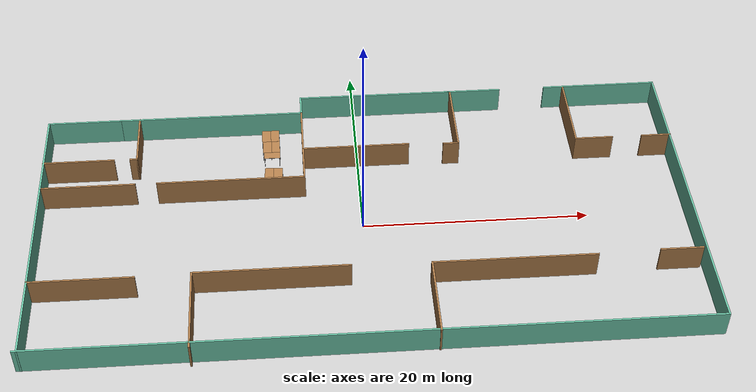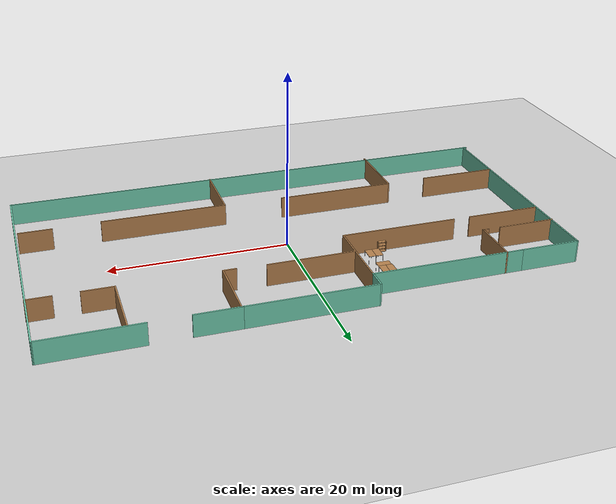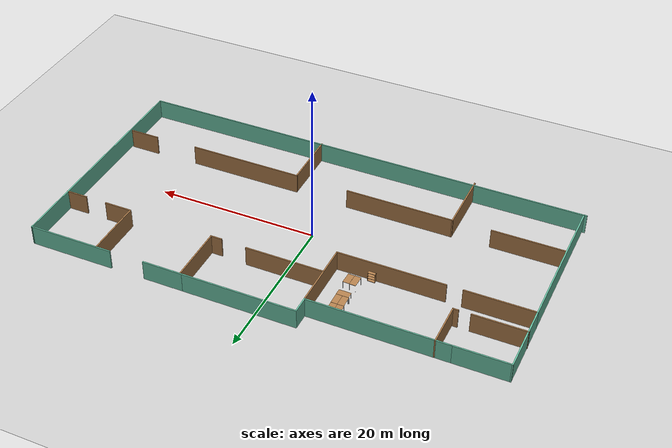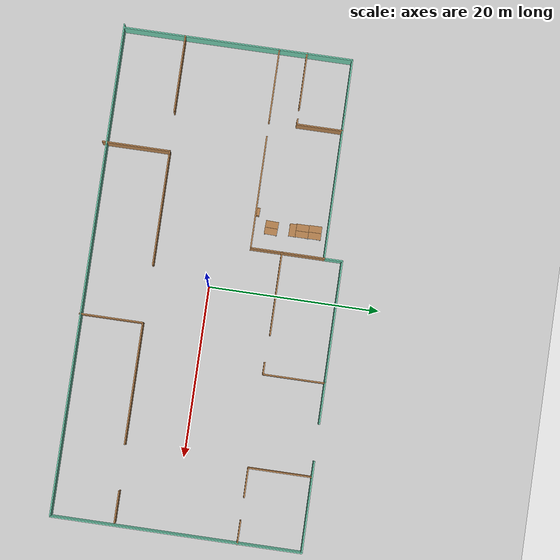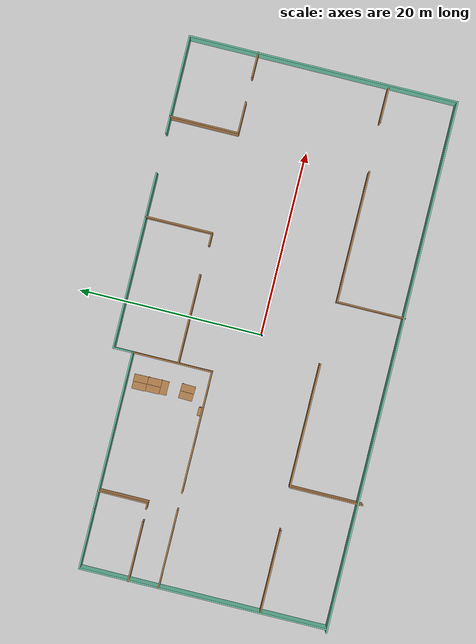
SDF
<sdf version="1.7">
 <world name="default">
  <model name="ground_plane">
   <static>1</static>
   <link name="link">
    <collision name="collision">
     <geometry><plane><normal>0 0 1</normal><size>100 100</size></plane></geometry>
     <surface>
      <contact><collide_bitmask>65535</collide_bitmask></contact>
      <friction><ode><mu>100</mu><mu2>50</mu2></ode></friction>
     </surface>
    </collision>
    <visual name="visual">
     <cast_shadows>0</cast_shadows>
     <geometry><plane><normal>0 0 1</normal><size>100 100</size></plane></geometry>
     <material>
      <script><uri>file://media/materials/scripts/gazebo.material</uri><name>Gazebo/Grey</name></script>
     </material>
    </visual>
   </link>
  </model>
  <model name="full_office">
   <pose>0.0274 0.1655 0 0 -0 0</pose>
   <link name="Wall_0">
    <collision name="Wall_0_Collision">
     <geometry><box><size>17 0.15 2.5</size></box></geometry>
     <pose>0 0 1.25 0 -0 0</pose>
    </collision>
    <visual name="Wall_0_Visual">
     <pose>0 0 1.25 0 -0 0</pose>
     <geometry><box><size>17 0.15 2.5</size></box></geometry>
     <material>
      <script><uri>file://media/materials/scripts/gazebo.material</uri><name>Gazebo/Grey</name></script>
      <ambient>0.435294 0.796078 0.67451 1</ambient>
     </material>
     <meta><layer>0</layer></meta>
    </visual>
    <pose>-13.4599 12.605 0 0 -0 0</pose>
   </link>
   <link name="Wall_1">
    <collision name="Wall_1_Collision">
     <geometry><box><size>8.75 0.15 2.5</size></box></geometry>
     <pose>0 0 1.25 0 -0 0</pose>
    </collision>
    <visual name="Wall_1_Visual">
     <pose>0 0 1.25 0 -0 0</pose>
     <geometry><box><size>8.75 0.15 2.5</size></box></geometry>
     <material>
      <script><uri>file://media/materials/scripts/gazebo.material</uri><name>Gazebo/Wood</name></script>
      <ambient>1 0.764706 0.305882 1</ambient>
     </material>
     <meta><layer>0</layer></meta>
    </visual>
    <pose>-5.03487 8.30505 0 0 -0 -1.5708</pose>
   </link>
   <link name="Wall_12">
    <collision name="Wall_12_Collision">
     <geometry><box><size>6.5 0.15 2.5</size></box></geometry>
     <pose>0 0 1.25 0 -0 0</pose>
    </collision>
    <visual name="Wall_12_Visual">
     <pose>0 0 1.25 0 -0 0</pose>
     <geometry><box><size>6.5 0.15 2.5</size></box></geometry>
     <material>
      <script><uri>file://media/materials/scripts/gazebo.material</uri><name>Gazebo/Wood</name></script>
      <ambient>1 0.764706 0.305882 1</ambient>
     </material>
     <meta><layer>0</layer></meta>
    </visual>
    <pose>-25.359 7.2693 0 0 -0 0</pose>
   </link>
   <link name="Wall_14">
    <collision name="Wall_14_Collision">
     <geometry><box><size>0.75 0.15 2.5</size></box></geometry>
     <pose>0 0 1.25 0 -0 0</pose>
    </collision>
    <visual name="Wall_14_Visual">
     <pose>0 0 1.25 0 -0 0</pose>
     <geometry><box><size>0.75 0.15 2.5</size></box></geometry>
     <material>
      <script><uri>file://media/materials/scripts/gazebo.material</uri><name>Gazebo/Wood</name></script>
      <ambient>1 0.764706 0.305882 1</ambient>
     </material>
     <meta><layer>0</layer></meta>
    </visual>
    <pose>-20.387 7.2693 0 0 -0 0</pose>
   </link>
   <link name="Wall_15">
    <collision name="Wall_15_Collision">
     <geometry><box><size>5.5 0.15 2.5</size></box></geometry>
     <pose>0 0 1.25 0 -0 0</pose>
    </collision>
    <visual name="Wall_15_Visual">
     <pose>0 0 1.25 0 -0 0</pose>
     <geometry><box><size>5.5 0.15 2.5</size></box></geometry>
     <material>
      <script><uri>file://media/materials/scripts/gazebo.material</uri><name>Gazebo/Wood</name></script>
      <ambient>1 0.764706 0.305882 1</ambient>
     </material>
     <meta><layer>0</layer></meta>
    </visual>
    <pose>-20.087 9.9443 0 0 -0 1.5708</pose>
   </link>
   <link name="Wall_2">
    <collision name="Wall_2_Collision">
     <geometry><box><size>13.25 0.15 2.5</size></box></geometry>
     <pose>0 0 1.25 0 -0 0</pose>
    </collision>
    <visual name="Wall_2_Visual">
     <pose>0 0 1.25 0 -0 0</pose>
     <geometry><box><size>13.25 0.15 2.5</size></box></geometry>
     <material>
      <script><uri>file://media/materials/scripts/gazebo.material</uri><name>Gazebo/Wood</name></script>
      <ambient>1 0.764706 0.305882 1</ambient>
     </material>
     <meta><layer>0</layer></meta>
    </visual>
    <pose>-11.5849 4.00505 0 0 -0 3.14159</pose>
   </link>
   <link name="Wall_27">
    <collision name="Wall_27_Collision">
     <geometry><box><size>57.75 0.15 2.5</size></box></geometry>
     <pose>0 0 1.25 0 -0 0</pose>
    </collision>
    <visual name="Wall_27_Visual">
     <pose>0 0 1.25 0 -0 0</pose>
     <geometry><box><size>57.75 0.15 2.5</size></box></geometry>
     <material>
      <script><uri>file://media/materials/scripts/gazebo.material</uri><name>Gazebo/Grey</name></script>
      <ambient>0.435294 0.796078 0.67451 1</ambient>
     </material>
     <meta><layer>0</layer></meta>
    </visual>
    <pose>-0.020816 -14.3292 0 0 -0 0</pose>
   </link>
   <link name="Wall_28">
    <collision name="Wall_28_Collision">
     <geometry><box><size>29.25 0.15 2.5</size></box></geometry>
     <pose>0 0 1.25 0 -0 0</pose>
    </collision>
    <visual name="Wall_28_Visual">
     <pose>0 0 1.25 0 -0 0</pose>
     <geometry><box><size>29.25 0.15 2.5</size></box></geometry>
     <material>
      <script><uri>file://media/materials/scripts/gazebo.material</uri><name>Gazebo/Grey</name></script>
      <ambient>0.435294 0.796078 0.67451 1</ambient>
     </material>
     <meta><layer>0</layer></meta>
    </visual>
    <pose>28.7792 0.220838 0 0 -0 1.5708</pose>
   </link>
   <link name="Wall_32">
    <collision name="Wall_32_Collision">
     <geometry><box><size>2.25 0.15 2.5</size></box></geometry>
     <pose>0 0 1.25 0 -0 0</pose>
    </collision>
    <visual name="Wall_32_Visual">
     <pose>0 0 1.25 0 -0 0</pose>
     <geometry><box><size>2.25 0.15 2.5</size></box></geometry>
     <material>
      <script><uri>file://media/materials/scripts/gazebo.material</uri><name>Gazebo/Grey</name></script>
      <ambient>0.435294 0.796078 0.67451 1</ambient>
     </material>
     <meta><layer>0</layer></meta>
    </visual>
    <pose>-5.03487 13.655 0 0 -0 1.5708</pose>
   </link>
   <link name="Wall_37">
    <collision name="Wall_37_Collision">
     <geometry><box><size>9.75 0.15 2.5</size></box></geometry>
     <pose>0 0 1.25 0 -0 0</pose>
    </collision>
    <visual name="Wall_37_Visual">
     <pose>0 0 1.25 0 -0 0</pose>
     <geometry><box><size>9.75 0.15 2.5</size></box></geometry>
     <material>
      <script><uri>file://media/materials/scripts/gazebo.material</uri><name>Gazebo/Wood</name></script>
      <ambient>1 1 1 1</ambient>
     </material>
     <meta><layer>0</layer></meta>
    </visual>
    <pose>-0.207313 7.6604 0 0 -0 0</pose>
   </link>
   <link name="Wall_39">
    <collision name="Wall_39_Collision">
     <geometry><box><size>1.5 0.15 2.5</size></box></geometry>
     <pose>0 0 1.25 0 -0 0</pose>
    </collision>
    <visual name="Wall_39_Visual">
     <pose>0 0 1.25 0 -0 0</pose>
     <geometry><box><size>1.5 0.15 2.5</size></box></geometry>
     <material>
      <script><uri>file://media/materials/scripts/gazebo.material</uri><name>Gazebo/Wood</name></script>
      <ambient>1 1 1 1</ambient>
     </material>
     <meta><layer>0</layer></meta>
    </visual>
    <pose>8.53256 7.49858 0 0 -0 0</pose>
   </link>
   <link name="Wall_4">
    <collision name="Wall_4_Collision">
     <geometry><box><size>6.75 0.15 2.5</size></box></geometry>
     <pose>0 0 1.25 0 -0 0</pose>
    </collision>
    <visual name="Wall_4_Visual">
     <pose>0 0 1.25 0 -0 0</pose>
     <geometry><box><size>6.75 0.15 2.5</size></box></geometry>
     <material>
      <script><uri>file://media/materials/scripts/gazebo.material</uri><name>Gazebo/Grey</name></script>
      <ambient>0.435294 0.796078 0.67451 1</ambient>
     </material>
     <meta><layer>0</layer></meta>
    </visual>
    <pose>-25.1849 12.605 0 0 -0 3.14159</pose>
   </link>
   <link name="Wall_40">
    <collision name="Wall_40_Collision">
     <geometry><box><size>7.25 0.15 2.5</size></box></geometry>
     <pose>0 0 1.25 0 -0 0</pose>
    </collision>
    <visual name="Wall_40_Visual">
     <pose>0 0 1.25 0 -0 0</pose>
     <geometry><box><size>7.25 0.15 2.5</size></box></geometry>
     <material>
      <script><uri>file://media/materials/scripts/gazebo.material</uri><name>Gazebo/Wood</name></script>
      <ambient>1 1 1 1</ambient>
     </material>
     <meta><layer>0</layer></meta>
    </visual>
    <pose>9.20756 11.0486 0 0 -0 1.5708</pose>
   </link>
   <link name="Wall_42">
    <collision name="Wall_42_Collision">
     <geometry><box><size>7.5 0.15 2.5</size></box></geometry>
     <pose>0 0 1.25 0 -0 0</pose>
    </collision>
    <visual name="Wall_42_Visual">
     <pose>0 0 1.25 0 -0 0</pose>
     <geometry><box><size>7.5 0.15 2.5</size></box></geometry>
     <material>
      <script><uri>file://media/materials/scripts/gazebo.material</uri><name>Gazebo/Wood</name></script>
      <ambient>1 1 1 1</ambient>
     </material>
     <meta><layer>0</layer></meta>
    </visual>
    <pose>20.0751 11.0247 0 0 -0 -1.5708</pose>
   </link>
   <link name="Wall_43">
    <collision name="Wall_43_Collision">
     <geometry><box><size>3.5 0.15 2.5</size></box></geometry>
     <pose>0 0 1.25 0 -0 0</pose>
    </collision>
    <visual name="Wall_43_Visual">
     <pose>0 0 1.25 0 -0 0</pose>
     <geometry><box><size>3.5 0.15 2.5</size></box></geometry>
     <material>
      <script><uri>file://media/materials/scripts/gazebo.material</uri><name>Gazebo/Wood</name></script>
      <ambient>1 1 1 1</ambient>
     </material>
     <meta><layer>0</layer></meta>
    </visual>
    <pose>21.7501 7.34967 0 0 -0 0</pose>
   </link>
   <link name="Wall_45">
    <collision name="Wall_45_Collision">
     <geometry><box><size>2.75 0.15 2.5</size></box></geometry>
     <pose>0 0 1.25 0 -0 0</pose>
    </collision>
    <visual name="Wall_45_Visual">
     <pose>0 0 1.25 0 -0 0</pose>
     <geometry><box><size>2.75 0.15 2.5</size></box></geometry>
     <material>
      <script><uri>file://media/materials/scripts/gazebo.material</uri><name>Gazebo/Wood</name></script>
      <ambient>1 1 1 1</ambient>
     </material>
     <meta><layer>0</layer></meta>
    </visual>
    <pose>27.5208 7.33676 0 0 -0 3.14159</pose>
   </link>
   <link name="Wall_48">
    <collision name="Wall_48_Collision">
     <geometry><box><size>18.5 0.15 2.5</size></box></geometry>
     <pose>0 0 1.25 0 -0 0</pose>
    </collision>
    <visual name="Wall_48_Visual">
     <pose>0 0 1.25 0 -0 0</pose>
     <geometry><box><size>18.5 0.15 2.5</size></box></geometry>
     <material>
      <script><uri>file://media/materials/scripts/gazebo.material</uri><name>Gazebo/Grey</name></script>
      <ambient>0.435294 0.796078 0.67451 1</ambient>
     </material>
     <meta><layer>0</layer></meta>
    </visual>
    <pose>-28.4849 -5.16995 0 0 -0 -1.5708</pose>
   </link>
   <link name="Wall_5">
    <collision name="Wall_5_Collision">
     <geometry><box><size>8.75 0.15 2.5</size></box></geometry>
     <pose>0 0 1.25 0 -0 0</pose>
    </collision>
    <visual name="Wall_5_Visual">
     <pose>0 0 1.25 0 -0 0</pose>
     <geometry><box><size>8.75 0.15 2.5</size></box></geometry>
     <material>
      <script><uri>file://media/materials/scripts/gazebo.material</uri><name>Gazebo/Grey</name></script>
      <ambient>0.435294 0.796078 0.67451 1</ambient>
     </material>
     <meta><layer>0</layer></meta>
    </visual>
    <pose>-28.4849 8.30505 0 0 -0 -1.5708</pose>
   </link>
   <link name="Wall_50">
    <collision name="Wall_50_Collision">
     <geometry><box><size>9 0.15 2.5</size></box></geometry>
     <pose>0 0 1.25 0 -0 0</pose>
    </collision>
    <visual name="Wall_50_Visual">
     <pose>0 0 1.25 0 -0 0</pose>
     <geometry><box><size>9 0.15 2.5</size></box></geometry>
     <material>
      <script><uri>file://media/materials/scripts/gazebo.material</uri><name>Gazebo/Wood</name></script>
      <ambient>1 1 1 1</ambient>
     </material>
     <meta><layer>0</layer></meta>
    </visual>
    <pose>-24.0351 -7.08379 0 0 -0 0</pose>
   </link>
   <link name="Wall_52">
    <collision name="Wall_52_Collision">
     <geometry><box><size>13.5 0.15 2.5</size></box></geometry>
     <pose>0 0 1.25 0 -0 0</pose>
    </collision>
    <visual name="Wall_52_Visual">
     <pose>0 0 1.25 0 -0 0</pose>
     <geometry><box><size>13.5 0.15 2.5</size></box></geometry>
     <material>
      <script><uri>file://media/materials/scripts/gazebo.material</uri><name>Gazebo/Wood</name></script>
      <ambient>1 1 1 1</ambient>
     </material>
     <meta><layer>0</layer></meta>
    </visual>
    <pose>-8.1903 -6.92105 0 0 -0 0</pose>
   </link>
   <link name="Wall_54">
    <collision name="Wall_54_Collision">
     <geometry><box><size>14.25 0.15 2.5</size></box></geometry>
     <pose>0 0 1.25 0 -0 0</pose>
    </collision>
    <visual name="Wall_54_Visual">
     <pose>0 0 1.25 0 -0 0</pose>
     <geometry><box><size>14.25 0.15 2.5</size></box></geometry>
     <material>
      <script><uri>file://media/materials/scripts/gazebo.material</uri><name>Gazebo/Wood</name></script>
      <ambient>1 1 1 1</ambient>
     </material>
     <meta><layer>0</layer></meta>
    </visual>
    <pose>12.3646 -7.08379 0 0 -0 0</pose>
   </link>
   <link name="Wall_56">
    <collision name="Wall_56_Collision">
     <geometry><box><size>3.75 0.15 2.5</size></box></geometry>
     <pose>0 0 1.25 0 -0 0</pose>
    </collision>
    <visual name="Wall_56_Visual">
     <pose>0 0 1.25 0 -0 0</pose>
     <geometry><box><size>3.75 0.15 2.5</size></box></geometry>
     <material>
      <script><uri>file://media/materials/scripts/gazebo.material</uri><name>Gazebo/Wood</name></script>
      <ambient>1 1 1 1</ambient>
     </material>
     <meta><layer>0</layer></meta>
    </visual>
    <pose>26.6436 -6.92105 0 0 -0 0</pose>
   </link>
   <link name="Wall_58">
    <collision name="Wall_58_Collision">
     <geometry><box><size>8 0.15 2.5</size></box></geometry>
     <pose>0 0 1.25 0 -0 0</pose>
    </collision>
    <visual name="Wall_58_Visual">
     <pose>0 0 1.25 0 -0 0</pose>
     <geometry><box><size>8 0.15 2.5</size></box></geometry>
     <material>
      <script><uri>file://media/materials/scripts/gazebo.material</uri><name>Gazebo/Wood</name></script>
      <ambient>1 1 1 1</ambient>
     </material>
     <meta><layer>0</layer></meta>
    </visual>
    <pose>-14.8653 -10.846 0 0 -0 -1.5708</pose>
   </link>
   <link name="Wall_6">
    <collision name="Wall_6_Collision">
     <geometry><box><size>8.5 0.15 2.5</size></box></geometry>
     <pose>0 0 1.25 0 -0 0</pose>
    </collision>
    <visual name="Wall_6_Visual">
     <pose>0 0 1.25 0 -0 0</pose>
     <geometry><box><size>8.5 0.15 2.5</size></box></geometry>
     <material>
      <script><uri>file://media/materials/scripts/gazebo.material</uri><name>Gazebo/Wood</name></script>
      <ambient>1 0.764706 0.305882 1</ambient>
     </material>
     <meta><layer>0</layer></meta>
    </visual>
    <pose>-24.3099 4.00505 0 0 -0 0</pose>
   </link>
   <link name="Wall_62">
    <collision name="Wall_62_Collision">
     <geometry><box><size>7.5 0.15 2.5</size></box></geometry>
     <pose>0 0 1.25 0 -0 0</pose>
    </collision>
    <visual name="Wall_62_Visual">
     <pose>0 0 1.25 0 -0 0</pose>
     <geometry><box><size>7.5 0.15 2.5</size></box></geometry>
     <material>
      <script><uri>file://media/materials/scripts/gazebo.material</uri><name>Gazebo/Wood</name></script>
      <ambient>1 1 1 1</ambient>
     </material>
     <meta><layer>0</layer></meta>
    </visual>
    <pose>5.31461 -10.7588 0 0 -0 -1.5708</pose>
   </link>
   <link name="Wall_64">
    <collision name="Wall_64_Collision">
     <geometry><box><size>14.25 0.15 2.5</size></box></geometry>
     <pose>0 0 1.25 0 -0 0</pose>
    </collision>
    <visual name="Wall_64_Visual">
     <pose>0 0 1.25 0 -0 0</pose>
     <geometry><box><size>14.25 0.15 2.5</size></box></geometry>
     <material>
      <script><uri>file://media/materials/scripts/gazebo.material</uri><name>Gazebo/Grey</name></script>
      <ambient>0.435294 0.796078 0.67451 1</ambient>
     </material>
     <meta><layer>0</layer></meta>
    </visual>
    <pose>2.01513 14.705 0 0 -0 0</pose>
   </link>
   <link name="Wall_66">
    <collision name="Wall_66_Collision">
     <geometry><box><size>5 0.15 2.5</size></box></geometry>
     <pose>0 0 1.25 0 -0 0</pose>
    </collision>
    <visual name="Wall_66_Visual">
     <pose>0 0 1.25 0 -0 0</pose>
     <geometry><box><size>5 0.15 2.5</size></box></geometry>
     <material>
      <script><uri>file://media/materials/scripts/gazebo.material</uri><name>Gazebo/Grey</name></script>
      <ambient>0.435294 0.796078 0.67451 1</ambient>
     </material>
     <meta><layer>0</layer></meta>
    </visual>
    <pose>11.4901 14.705 0 0 -0 0</pose>
   </link>
   <link name="Wall_68">
    <collision name="Wall_68_Collision">
     <geometry><box><size>10.6315 0.15 2.5</size></box></geometry>
     <pose>0 0 1.25 0 -0 0</pose>
    </collision>
    <visual name="Wall_68_Visual">
     <pose>0 0 1.25 0 -0 0</pose>
     <geometry><box><size>10.6315 0.15 2.5</size></box></geometry>
     <material>
      <script><uri>file://media/materials/scripts/gazebo.material</uri><name>Gazebo/Grey</name></script>
      <ambient>0.435294 0.796078 0.67451 1</ambient>
     </material>
     <meta><layer>0</layer></meta>
    </visual>
    <pose>23.5385 14.756 0 0 -0 0.002825</pose>
   </link>
   <static>1</static>
  </model>
  <model name="table_0_clone_6">
   <static>1</static>
   <link name="link">
    <collision name="surface">
     <pose>0 0 1 0 -0 0</pose>
     <geometry><box><size>1.5 0.8 0.03</size></box></geometry>
     <surface><friction><ode><mu>0.6</mu><mu2>0.6</mu2></ode></friction></surface>
    </collision>
    <visual name="visual1">
     <pose>0 0 1 0 -0 0</pose>
     <geometry><box><size>1.5 0.8 0.03</size></box></geometry>
     <material>
      <script><uri>file://media/materials/scripts/gazebo.material</uri><name>Gazebo/Wood</name></script>
     </material>
    </visual>
    <collision name="front_left_leg">
     <pose>0.68 0.38 0.5 0 -0 0</pose>
     <geometry><cylinder><radius>0.02</radius><length>1</length></cylinder></geometry>
    </collision>
    <visual name="front_left_leg">
     <pose>0.68 0.38 0.5 0 -0 0</pose>
     <geometry><cylinder><radius>0.02</radius><length>1</length></cylinder></geometry>
     <material>
      <script><uri>file://media/materials/scripts/gazebo.material</uri><name>Gazebo/Grey</name></script>
     </material>
    </visual>
    <collision name="front_right_leg">
     <pose>0.68 -0.38 0.5 0 -0 0</pose>
     <geometry><cylinder><radius>0.02</radius><length>1</length></cylinder></geometry>
    </collision>
    <visual name="front_right_leg">
     <pose>0.68 -0.38 0.5 0 -0 0</pose>
     <geometry><cylinder><radius>0.02</radius><length>1</length></cylinder></geometry>
     <material>
      <script><uri>file://media/materials/scripts/gazebo.material</uri><name>Gazebo/Grey</name></script>
     </material>
    </visual>
    <collision name="back_right_leg">
     <pose>-0.68 -0.38 0.5 0 -0 0</pose>
     <geometry><cylinder><radius>0.02</radius><length>1</length></cylinder></geometry>
    </collision>
    <visual name="back_right_leg">
     <pose>-0.68 -0.38 0.5 0 -0 0</pose>
     <geometry><cylinder><radius>0.02</radius><length>1</length></cylinder></geometry>
     <material>
      <script><uri>file://media/materials/scripts/gazebo.material</uri><name>Gazebo/Grey</name></script>
     </material>
    </visual>
    <collision name="back_left_leg">
     <pose>-0.68 0.38 0.5 0 -0 0</pose>
     <geometry><cylinder><radius>0.02</radius><length>1</length></cylinder></geometry>
    </collision>
    <visual name="back_left_leg">
     <pose>-0.68 0.38 0.5 0 -0 0</pose>
     <geometry><cylinder><radius>0.02</radius><length>1</length></cylinder></geometry>
     <material>
      <script><uri>file://media/materials/scripts/gazebo.material</uri><name>Gazebo/Grey</name></script>
     </material>
    </visual>
   </link>
   <pose>-8.18867 6.22527 7.2e-05 0.000175 0.010072 1.53538</pose>
  </model>
  <model name="table_0_clone_7">
   <static>1</static>
   <link name="link">
    <collision name="surface">
     <pose>0 0 1 0 -0 0</pose>
     <geometry><box><size>1.5 0.8 0.03</size></box></geometry>
     <surface><friction><ode><mu>0.6</mu><mu2>0.6</mu2></ode></friction></surface>
    </collision>
    <visual name="visual1">
     <pose>0 0 1 0 -0 0</pose>
     <geometry><box><size>1.5 0.8 0.03</size></box></geometry>
     <material>
      <script><uri>file://media/materials/scripts/gazebo.material</uri><name>Gazebo/Wood</name></script>
     </material>
    </visual>
    <collision name="front_left_leg">
     <pose>0.68 0.38 0.5 0 -0 0</pose>
     <geometry><cylinder><radius>0.02</radius><length>1</length></cylinder></geometry>
    </collision>
    <visual name="front_left_leg">
     <pose>0.68 0.38 0.5 0 -0 0</pose>
     <geometry><cylinder><radius>0.02</radius><length>1</length></cylinder></geometry>
     <material>
      <script><uri>file://media/materials/scripts/gazebo.material</uri><name>Gazebo/Grey</name></script>
     </material>
    </visual>
    <collision name="front_right_leg">
     <pose>0.68 -0.38 0.5 0 -0 0</pose>
     <geometry><cylinder><radius>0.02</radius><length>1</length></cylinder></geometry>
    </collision>
    <visual name="front_right_leg">
     <pose>0.68 -0.38 0.5 0 -0 0</pose>
     <geometry><cylinder><radius>0.02</radius><length>1</length></cylinder></geometry>
     <material>
      <script><uri>file://media/materials/scripts/gazebo.material</uri><name>Gazebo/Grey</name></script>
     </material>
    </visual>
    <collision name="back_right_leg">
     <pose>-0.68 -0.38 0.5 0 -0 0</pose>
     <geometry><cylinder><radius>0.02</radius><length>1</length></cylinder></geometry>
    </collision>
    <visual name="back_right_leg">
     <pose>-0.68 -0.38 0.5 0 -0 0</pose>
     <geometry><cylinder><radius>0.02</radius><length>1</length></cylinder></geometry>
     <material>
      <script><uri>file://media/materials/scripts/gazebo.material</uri><name>Gazebo/Grey</name></script>
     </material>
    </visual>
    <collision name="back_left_leg">
     <pose>-0.68 0.38 0.5 0 -0 0</pose>
     <geometry><cylinder><radius>0.02</radius><length>1</length></cylinder></geometry>
    </collision>
    <visual name="back_left_leg">
     <pose>-0.68 0.38 0.5 0 -0 0</pose>
     <geometry><cylinder><radius>0.02</radius><length>1</length></cylinder></geometry>
     <material>
      <script><uri>file://media/materials/scripts/gazebo.material</uri><name>Gazebo/Grey</name></script>
     </material>
    </visual>
   </link>
   <pose>-7.38527 6.20263 0 0 0 -1.60113</pose>
  </model>
  <model name="table_1">
   <static>1</static>
   <link name="link">
    <collision name="surface">
     <pose>0 0 1 0 -0 0</pose>
     <geometry><box><size>1.5 0.8 0.03</size></box></geometry>
     <surface><friction><ode><mu>0.6</mu><mu2>0.6</mu2></ode></friction></surface>
    </collision>
    <visual name="visual1">
     <pose>0 0 1 0 -0 0</pose>
     <geometry><box><size>1.5 0.8 0.03</size></box></geometry>
     <material>
      <script><uri>file://media/materials/scripts/gazebo.material</uri><name>Gazebo/Wood</name></script>
     </material>
    </visual>
    <collision name="front_left_leg">
     <pose>0.68 0.38 0.5 0 -0 0</pose>
     <geometry><cylinder><radius>0.02</radius><length>1</length></cylinder></geometry>
    </collision>
    <visual name="front_left_leg">
     <pose>0.68 0.38 0.5 0 -0 0</pose>
     <geometry><cylinder><radius>0.02</radius><length>1</length></cylinder></geometry>
     <material>
      <script><uri>file://media/materials/scripts/gazebo.material</uri><name>Gazebo/Grey</name></script>
     </material>
    </visual>
    <collision name="front_right_leg">
     <pose>0.68 -0.38 0.5 0 -0 0</pose>
     <geometry><cylinder><radius>0.02</radius><length>1</length></cylinder></geometry>
    </collision>
    <visual name="front_right_leg">
     <pose>0.68 -0.38 0.5 0 -0 0</pose>
     <geometry><cylinder><radius>0.02</radius><length>1</length></cylinder></geometry>
     <material>
      <script><uri>file://media/materials/scripts/gazebo.material</uri><name>Gazebo/Grey</name></script>
     </material>
    </visual>
    <collision name="back_right_leg">
     <pose>-0.68 -0.38 0.5 0 -0 0</pose>
     <geometry><cylinder><radius>0.02</radius><length>1</length></cylinder></geometry>
    </collision>
    <visual name="back_right_leg">
     <pose>-0.68 -0.38 0.5 0 -0 0</pose>
     <geometry><cylinder><radius>0.02</radius><length>1</length></cylinder></geometry>
     <material>
      <script><uri>file://media/materials/scripts/gazebo.material</uri><name>Gazebo/Grey</name></script>
     </material>
    </visual>
    <collision name="back_left_leg">
     <pose>-0.68 0.38 0.5 0 -0 0</pose>
     <geometry><cylinder><radius>0.02</radius><length>1</length></cylinder></geometry>
    </collision>
    <visual name="back_left_leg">
     <pose>-0.68 0.38 0.5 0 -0 0</pose>
     <geometry><cylinder><radius>0.02</radius><length>1</length></cylinder></geometry>
     <material>
      <script><uri>file://media/materials/scripts/gazebo.material</uri><name>Gazebo/Grey</name></script>
     </material>
    </visual>
   </link>
   <pose>-7.56843 11.3268 0 0 0 -1.56551</pose>
  </model>
  <model name="table_1_clone">
   <static>1</static>
   <link name="link">
    <collision name="surface">
     <pose>0 0 1 0 -0 0</pose>
     <geometry><box><size>1.5 0.8 0.03</size></box></geometry>
     <surface><friction><ode><mu>0.6</mu><mu2>0.6</mu2></ode></friction></surface>
    </collision>
    <visual name="visual1">
     <pose>0 0 1 0 -0 0</pose>
     <geometry><box><size>1.5 0.8 0.03</size></box></geometry>
     <material>
      <script><uri>file://media/materials/scripts/gazebo.material</uri><name>Gazebo/Wood</name></script>
     </material>
    </visual>
    <collision name="front_left_leg">
     <pose>0.68 0.38 0.5 0 -0 0</pose>
     <geometry><cylinder><radius>0.02</radius><length>1</length></cylinder></geometry>
    </collision>
    <visual name="front_left_leg">
     <pose>0.68 0.38 0.5 0 -0 0</pose>
     <geometry><cylinder><radius>0.02</radius><length>1</length></cylinder></geometry>
     <material>
      <script><uri>file://media/materials/scripts/gazebo.material</uri><name>Gazebo/Grey</name></script>
     </material>
    </visual>
    <collision name="front_right_leg">
     <pose>0.68 -0.38 0.5 0 -0 0</pose>
     <geometry><cylinder><radius>0.02</radius><length>1</length></cylinder></geometry>
    </collision>
    <visual name="front_right_leg">
     <pose>0.68 -0.38 0.5 0 -0 0</pose>
     <geometry><cylinder><radius>0.02</radius><length>1</length></cylinder></geometry>
     <material>
      <script><uri>file://media/materials/scripts/gazebo.material</uri><name>Gazebo/Grey</name></script>
     </material>
    </visual>
    <collision name="back_right_leg">
     <pose>-0.68 -0.38 0.5 0 -0 0</pose>
     <geometry><cylinder><radius>0.02</radius><length>1</length></cylinder></geometry>
    </collision>
    <visual name="back_right_leg">
     <pose>-0.68 -0.38 0.5 0 -0 0</pose>
     <geometry><cylinder><radius>0.02</radius><length>1</length></cylinder></geometry>
     <material>
      <script><uri>file://media/materials/scripts/gazebo.material</uri><name>Gazebo/Grey</name></script>
     </material>
    </visual>
    <collision name="back_left_leg">
     <pose>-0.68 0.38 0.5 0 -0 0</pose>
     <geometry><cylinder><radius>0.02</radius><length>1</length></cylinder></geometry>
    </collision>
    <visual name="back_left_leg">
     <pose>-0.68 0.38 0.5 0 -0 0</pose>
     <geometry><cylinder><radius>0.02</radius><length>1</length></cylinder></geometry>
     <material>
      <script><uri>file://media/materials/scripts/gazebo.material</uri><name>Gazebo/Grey</name></script>
     </material>
    </visual>
   </link>
   <pose>-7.54764 9.82281 0 0 0 -1.56551</pose>
  </model>
  <model name="table_1_clone_0">
   <static>1</static>
   <link name="link">
    <collision name="surface">
     <pose>0 0 1 0 -0 0</pose>
     <geometry><box><size>1.5 0.8 0.03</size></box></geometry>
     <surface><friction><ode><mu>0.6</mu><mu2>0.6</mu2></ode></friction></surface>
    </collision>
    <visual name="visual1">
     <pose>0 0 1 0 -0 0</pose>
     <geometry><box><size>1.5 0.8 0.03</size></box></geometry>
     <material>
      <script><uri>file://media/materials/scripts/gazebo.material</uri><name>Gazebo/Wood</name></script>
     </material>
    </visual>
    <collision name="front_left_leg">
     <pose>0.68 0.38 0.5 0 -0 0</pose>
     <geometry><cylinder><radius>0.02</radius><length>1</length></cylinder></geometry>
    </collision>
    <visual name="front_left_leg">
     <pose>0.68 0.38 0.5 0 -0 0</pose>
     <geometry><cylinder><radius>0.02</radius><length>1</length></cylinder></geometry>
     <material>
      <script><uri>file://media/materials/scripts/gazebo.material</uri><name>Gazebo/Grey</name></script>
     </material>
    </visual>
    <collision name="front_right_leg">
     <pose>0.68 -0.38 0.5 0 -0 0</pose>
     <geometry><cylinder><radius>0.02</radius><length>1</length></cylinder></geometry>
    </collision>
    <visual name="front_right_leg">
     <pose>0.68 -0.38 0.5 0 -0 0</pose>
     <geometry><cylinder><radius>0.02</radius><length>1</length></cylinder></geometry>
     <material>
      <script><uri>file://media/materials/scripts/gazebo.material</uri><name>Gazebo/Grey</name></script>
     </material>
    </visual>
    <collision name="back_right_leg">
     <pose>-0.68 -0.38 0.5 0 -0 0</pose>
     <geometry><cylinder><radius>0.02</radius><length>1</length></cylinder></geometry>
    </collision>
    <visual name="back_right_leg">
     <pose>-0.68 -0.38 0.5 0 -0 0</pose>
     <geometry><cylinder><radius>0.02</radius><length>1</length></cylinder></geometry>
     <material>
      <script><uri>file://media/materials/scripts/gazebo.material</uri><name>Gazebo/Grey</name></script>
     </material>
    </visual>
    <collision name="back_left_leg">
     <pose>-0.68 0.38 0.5 0 -0 0</pose>
     <geometry><cylinder><radius>0.02</radius><length>1</length></cylinder></geometry>
    </collision>
    <visual name="back_left_leg">
     <pose>-0.68 0.38 0.5 0 -0 0</pose>
     <geometry><cylinder><radius>0.02</radius><length>1</length></cylinder></geometry>
     <material>
      <script><uri>file://media/materials/scripts/gazebo.material</uri><name>Gazebo/Grey</name></script>
     </material>
    </visual>
   </link>
   <pose>-8.35898 11.3174 0 0 0 -1.56551</pose>
  </model>
  <model name="table_1_clone_1">
   <static>1</static>
   <link name="link">
    <collision name="surface">
     <pose>0 0 1 0 -0 0</pose>
     <geometry><box><size>1.5 0.8 0.03</size></box></geometry>
     <surface><friction><ode><mu>0.6</mu><mu2>0.6</mu2></ode></friction></surface>
    </collision>
    <visual name="visual1">
     <pose>0 0 1 0 -0 0</pose>
     <geometry><box><size>1.5 0.8 0.03</size></box></geometry>
     <material>
      <script><uri>file://media/materials/scripts/gazebo.material</uri><name>Gazebo/Wood</name></script>
     </material>
    </visual>
    <collision name="front_left_leg">
     <pose>0.68 0.38 0.5 0 -0 0</pose>
     <geometry><cylinder><radius>0.02</radius><length>1</length></cylinder></geometry>
    </collision>
    <visual name="front_left_leg">
     <pose>0.68 0.38 0.5 0 -0 0</pose>
     <geometry><cylinder><radius>0.02</radius><length>1</length></cylinder></geometry>
     <material>
      <script><uri>file://media/materials/scripts/gazebo.material</uri><name>Gazebo/Grey</name></script>
     </material>
    </visual>
    <collision name="front_right_leg">
     <pose>0.68 -0.38 0.5 0 -0 0</pose>
     <geometry><cylinder><radius>0.02</radius><length>1</length></cylinder></geometry>
    </collision>
    <visual name="front_right_leg">
     <pose>0.68 -0.38 0.5 0 -0 0</pose>
     <geometry><cylinder><radius>0.02</radius><length>1</length></cylinder></geometry>
     <material>
      <script><uri>file://media/materials/scripts/gazebo.material</uri><name>Gazebo/Grey</name></script>
     </material>
    </visual>
    <collision name="back_right_leg">
     <pose>-0.68 -0.38 0.5 0 -0 0</pose>
     <geometry><cylinder><radius>0.02</radius><length>1</length></cylinder></geometry>
    </collision>
    <visual name="back_right_leg">
     <pose>-0.68 -0.38 0.5 0 -0 0</pose>
     <geometry><cylinder><radius>0.02</radius><length>1</length></cylinder></geometry>
     <material>
      <script><uri>file://media/materials/scripts/gazebo.material</uri><name>Gazebo/Grey</name></script>
     </material>
    </visual>
    <collision name="back_left_leg">
     <pose>-0.68 0.38 0.5 0 -0 0</pose>
     <geometry><cylinder><radius>0.02</radius><length>1</length></cylinder></geometry>
    </collision>
    <visual name="back_left_leg">
     <pose>-0.68 0.38 0.5 0 -0 0</pose>
     <geometry><cylinder><radius>0.02</radius><length>1</length></cylinder></geometry>
     <material>
      <script><uri>file://media/materials/scripts/gazebo.material</uri><name>Gazebo/Grey</name></script>
     </material>
    </visual>
   </link>
   <pose>-8.30936 9.82451 0 0 0 -1.56551</pose>
  </model>
  <model name="table_1_clone_2">
   <static>1</static>
   <link name="link">
    <collision name="surface">
     <pose>0 0 1 0 -0 0</pose>
     <geometry><box><size>1.5 0.8 0.03</size></box></geometry>
     <surface><friction><ode><mu>0.6</mu><mu2>0.6</mu2></ode></friction></surface>
    </collision>
    <visual name="visual1">
     <pose>0 0 1 0 -0 0</pose>
     <geometry><box><size>1.5 0.8 0.03</size></box></geometry>
     <material>
      <script><uri>file://media/materials/scripts/gazebo.material</uri><name>Gazebo/Wood</name></script>
     </material>
    </visual>
    <collision name="front_left_leg">
     <pose>0.68 0.38 0.5 0 -0 0</pose>
     <geometry><cylinder><radius>0.02</radius><length>1</length></cylinder></geometry>
    </collision>
    <visual name="front_left_leg">
     <pose>0.68 0.38 0.5 0 -0 0</pose>
     <geometry><cylinder><radius>0.02</radius><length>1</length></cylinder></geometry>
     <material>
      <script><uri>file://media/materials/scripts/gazebo.material</uri><name>Gazebo/Grey</name></script>
     </material>
    </visual>
    <collision name="front_right_leg">
     <pose>0.68 -0.38 0.5 0 -0 0</pose>
     <geometry><cylinder><radius>0.02</radius><length>1</length></cylinder></geometry>
    </collision>
    <visual name="front_right_leg">
     <pose>0.68 -0.38 0.5 0 -0 0</pose>
     <geometry><cylinder><radius>0.02</radius><length>1</length></cylinder></geometry>
     <material>
      <script><uri>file://media/materials/scripts/gazebo.material</uri><name>Gazebo/Grey</name></script>
     </material>
    </visual>
    <collision name="back_right_leg">
     <pose>-0.68 -0.38 0.5 0 -0 0</pose>
     <geometry><cylinder><radius>0.02</radius><length>1</length></cylinder></geometry>
    </collision>
    <visual name="back_right_leg">
     <pose>-0.68 -0.38 0.5 0 -0 0</pose>
     <geometry><cylinder><radius>0.02</radius><length>1</length></cylinder></geometry>
     <material>
      <script><uri>file://media/materials/scripts/gazebo.material</uri><name>Gazebo/Grey</name></script>
     </material>
    </visual>
    <collision name="back_left_leg">
     <pose>-0.68 0.38 0.5 0 -0 0</pose>
     <geometry><cylinder><radius>0.02</radius><length>1</length></cylinder></geometry>
    </collision>
    <visual name="back_left_leg">
     <pose>-0.68 0.38 0.5 0 -0 0</pose>
     <geometry><cylinder><radius>0.02</radius><length>1</length></cylinder></geometry>
     <material>
      <script><uri>file://media/materials/scripts/gazebo.material</uri><name>Gazebo/Grey</name></script>
     </material>
    </visual>
   </link>
   <pose>-7.88545 8.70408 0 0 0 -0.008076</pose>
  </model>
  <model name="bookshelf">
   <static>1</static>
   <link name="link">
    <inertial><mass>1</mass></inertial>
    <collision name="back">
     <pose>0 0.005 0.6 0 -0 0</pose>
     <geometry><box><size>0.9 0.01 1.2</size></box></geometry>
    </collision>
    <visual name="visual1">
     <pose>0 0.005 0.6 0 -0 0</pose>
     <geometry><box><size>0.9 0.01 1.2</size></box></geometry>
     <material>
      <script><uri>file://media/materials/scripts/gazebo.material</uri><name>Gazebo/Wood</name></script>
     </material>
    </visual>
    <collision name="left_side">
     <pose>0.45 -0.195 0.6 0 -0 0</pose>
     <geometry><box><size>0.02 0.4 1.2</size></box></geometry>
    </collision>
    <visual name="visual2">
     <pose>0.45 -0.195 0.6 0 -0 0</pose>
     <geometry><box><size>0.02 0.4 1.2</size></box></geometry>
     <material>
      <script><uri>file://media/materials/scripts/gazebo.material</uri><name>Gazebo/Wood</name></script>
     </material>
    </visual>
    <collision name="right_side">
     <pose>-0.45 -0.195 0.6 0 -0 0</pose>
     <geometry><box><size>0.02 0.4 1.2</size></box></geometry>
    </collision>
    <visual name="visual3">
     <pose>-0.45 -0.195 0.6 0 -0 0</pose>
     <geometry><box><size>0.02 0.4 1.2</size></box></geometry>
     <material>
      <script><uri>file://media/materials/scripts/gazebo.material</uri><name>Gazebo/Wood</name></script>
     </material>
    </visual>
    <collision name="bottom">
     <pose>0 -0.195 0.03 0 -0 0</pose>
     <geometry><box><size>0.88 0.4 0.06</size></box></geometry>
    </collision>
    <visual name="visual4">
     <pose>0 -0.195 0.03 0 -0 0</pose>
     <geometry><box><size>0.88 0.4 0.06</size></box></geometry>
     <material>
      <script><uri>file://media/materials/scripts/gazebo.material</uri><name>Gazebo/Wood</name></script>
     </material>
    </visual>
    <collision name="top">
     <pose>0 -0.195 1.19 0 -0 0</pose>
     <geometry><box><size>0.88 0.4 0.02</size></box></geometry>
    </collision>
    <visual name="visual5">
     <pose>0 -0.195 1.19 0 -0 0</pose>
     <geometry><box><size>0.88 0.4 0.02</size></box></geometry>
     <material>
      <script><uri>file://media/materials/scripts/gazebo.material</uri><name>Gazebo/Wood</name></script>
     </material>
    </visual>
    <collision name="low_shelf">
     <pose>0 -0.195 0.43 0 -0 0</pose>
     <geometry><box><size>0.88 0.4 0.02</size></box></geometry>
    </collision>
    <visual name="visual6">
     <pose>0 -0.195 0.43 0 -0 0</pose>
     <geometry><box><size>0.88 0.4 0.02</size></box></geometry>
     <material>
      <script><uri>file://media/materials/scripts/gazebo.material</uri><name>Gazebo/Wood</name></script>
     </material>
    </visual>
    <collision name="high_shelf">
     <pose>0 -0.195 0.8 0 -0 0</pose>
     <geometry><box><size>0.88 0.4 0.02</size></box></geometry>
    </collision>
    <visual name="visual7">
     <pose>0 -0.195 0.8 0 -0 0</pose>
     <geometry><box><size>0.88 0.4 0.02</size></box></geometry>
     <material>
      <script><uri>file://media/materials/scripts/gazebo.material</uri><name>Gazebo/Wood</name></script>
     </material>
    </visual>
   </link>
   <pose>-9.44482 4.22377 0 0 -0 3.11376</pose>
  </model>
 </world>
</sdf>
